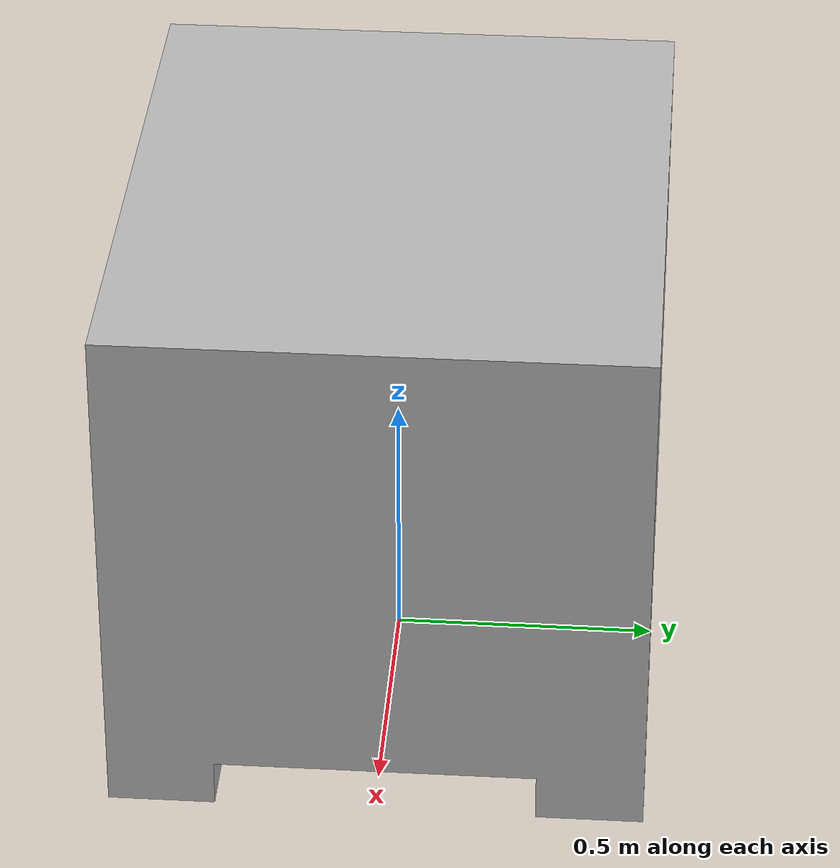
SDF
<?xml version="1.0" ?>
<sdf version="1.7">
  <model name="gri_engel">
    <static>false</static>
    <link name="link">

      <inertial>
        <pose>0 0 0.5 0 0 0</pose>
        <mass>50.0</mass> <inertia>
          <ixx>8.33</ixx><ixy>0</ixy><ixz>0</ixz>
          <iyy>10.16</iyy><iyz>0</iyz>
          <izz>10.16</izz>
        </inertia>
      </inertial>

      <visual name="visual">
        <pose>0 0 0 0 0 0</pose>
        <geometry>
          <mesh>
            <uri>model://gri_engel/meshes/gri_engel.obj</uri>
          </mesh>
        </geometry>
      </visual>

      <collision name="collision">
        <pose>0 0 0.5 0 0 0</pose>
        <geometry>
          <box>
            <size>1.2 1 1</size>
          </box>
        </geometry>
        <surface>
          <friction>
            <ode>
              <mu>100</mu>
              <mu2>100</mu2>
            </ode>
          </friction>
        </surface>
      </collision>

    </link>
  </model>
</sdf>
